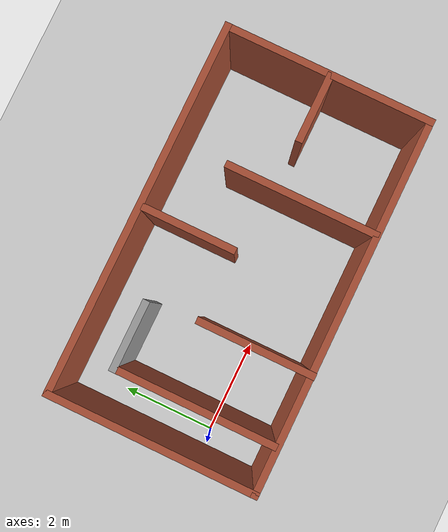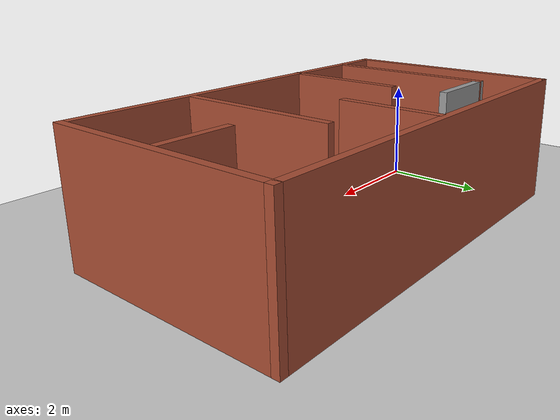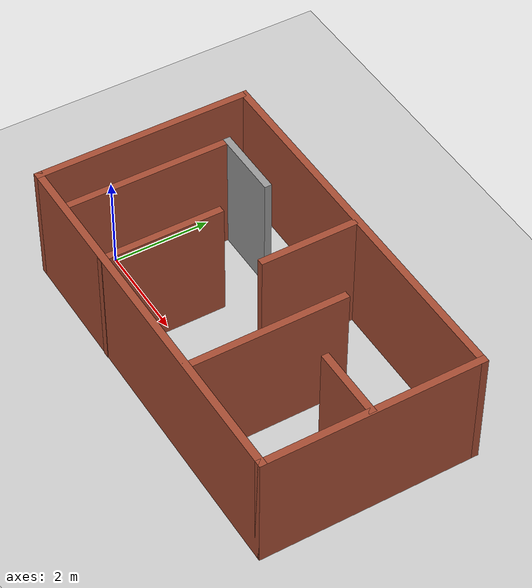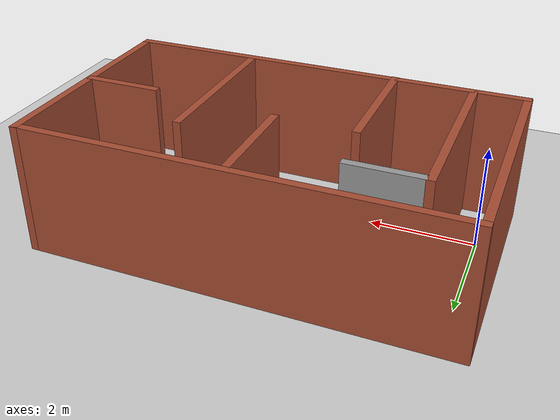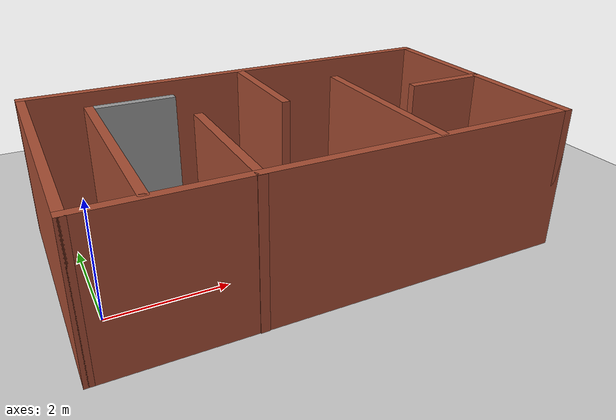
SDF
<sdf version="1.7">
 <world name="default">
  <light name="sun" type="directional">
   <pose>0 0 10 0 -0 0</pose>
   <diffuse>0.8 0.8 0.8 1</diffuse>
   <specular>0.2 0.2 0.2 1</specular>
   <attenuation>
    <range>1000</range>
    <constant>0.9</constant>
    <linear>0.01</linear>
    <quadratic>0.001</quadratic>
   </attenuation>
   <direction>-0.5 0.1 -0.9</direction>
   <spot><inner_angle>0</inner_angle><outer_angle>0</outer_angle><falloff>0</falloff></spot>
  </light>
  <model name="ground_plane">
   <static>1</static>
   <link name="link">
    <collision name="collision">
     <geometry><plane><normal>0 0 1</normal><size>100 100</size></plane></geometry>
     <surface>
      <contact><collide_bitmask>65535</collide_bitmask></contact>
      <friction><ode><mu>100</mu><mu2>50</mu2></ode></friction>
     </surface>
    </collision>
    <visual name="visual">
     <cast_shadows>0</cast_shadows>
     <geometry><plane><normal>0 0 1</normal><size>100 100</size></plane></geometry>
     <material>
      <script><uri>file://media/materials/scripts/gazebo.material</uri><name>Gazebo/Grey</name></script>
     </material>
    </visual>
   </link>
  </model>
  <gravity>0 0 -9.8</gravity>
  <magnetic_field>6e-06 2.3e-05 -4.2e-05</magnetic_field>
  <atmosphere type="adiabatic"/>
  <physics type="ode">
   <max_step_size>0.001</max_step_size>
   <real_time_factor>1</real_time_factor>
   <real_time_update_rate>1000</real_time_update_rate>
  </physics>
  <scene><ambient>0.4 0.4 0.4 1</ambient><background>0.7 0.7 0.7 1</background><shadows>1</shadows></scene>
  <spherical_coordinates>
   <surface_model>EARTH_WGS84</surface_model>
   <latitude_deg>0</latitude_deg>
   <longitude_deg>0</longitude_deg>
   <elevation>0</elevation>
   <heading_deg>0</heading_deg>
  </spherical_coordinates>
  <model name="Untitled">
   <pose>3.5 1 0 0 -0 0</pose>
   <link name="Wall_0">
    <collision name="Wall_0_Collision">
     <geometry><box><size>8 0.15 2.5</size></box></geometry>
     <pose>0 0 1.25 0 -0 0</pose>
    </collision>
    <visual name="Wall_0_Visual">
     <pose>0 0 1.25 0 -0 0</pose>
     <geometry><box><size>8 0.15 2.5</size></box></geometry>
     <material>
      <script><uri>file://media/materials/scripts/gazebo.material</uri><name>Gazebo/Bricks</name></script>
      <ambient>1 1 1 1</ambient>
     </material>
     <meta><layer>0</layer></meta>
    </visual>
    <pose>0 -2.2325 0 0 -0 0</pose>
   </link>
   <link name="Wall_1">
    <collision name="Wall_1_Collision">
     <geometry><box><size>4.5 0.15 2.5</size></box></geometry>
     <pose>0 0 1.25 0 -0 0</pose>
    </collision>
    <visual name="Wall_1_Visual">
     <pose>0 0 1.25 0 -0 0</pose>
     <geometry><box><size>4.5 0.15 2.5</size></box></geometry>
     <material>
      <script><uri>file://media/materials/scripts/gazebo.material</uri><name>Gazebo/Bricks</name></script>
      <ambient>1 1 1 1</ambient>
     </material>
     <meta><layer>0</layer></meta>
    </visual>
    <pose>3.925 -0.0575 0 0 -0 1.5708</pose>
   </link>
   <link name="Wall_10">
    <collision name="Wall_10_Collision">
     <geometry><box><size>2 0.15 2.5</size></box></geometry>
     <pose>0 0 1.25 0 -0 0</pose>
    </collision>
    <visual name="Wall_10_Visual">
     <pose>0 0 1.25 0 -0 0</pose>
     <geometry><box><size>2 0.15 2.5</size></box></geometry>
     <material>
      <script><uri>file://media/materials/scripts/gazebo.material</uri><name>Gazebo/Bricks</name></script>
      <ambient>1 1 1 1</ambient>
     </material>
     <meta><layer>0</layer></meta>
    </visual>
    <pose>0.045 1.0725 0 0 -0 1.5708</pose>
   </link>
   <link name="Wall_12">
    <collision name="Wall_12_Collision">
     <geometry><box><size>3.25 0.15 2.5</size></box></geometry>
     <pose>0 0 1.25 0 -0 0</pose>
    </collision>
    <visual name="Wall_12_Visual">
     <pose>0 0 1.25 0 -0 0</pose>
     <geometry><box><size>3.25 0.15 2.5</size></box></geometry>
     <material>
      <script><uri>file://media/materials/scripts/gazebo.material</uri><name>Gazebo/Bricks</name></script>
      <ambient>1 1 1 1</ambient>
     </material>
     <meta><layer>0</layer></meta>
    </visual>
    <pose>1.48406 -0.642738 0 0 -0 1.5708</pose>
   </link>
   <link name="Wall_14">
    <collision name="Wall_14_Collision">
     <geometry><box><size>1.5 0.15 2.5</size></box></geometry>
     <pose>0 0 1.25 0 -0 0</pose>
    </collision>
    <visual name="Wall_14_Visual">
     <pose>0 0 1.25 0 -0 0</pose>
     <geometry><box><size>1.5 0.15 2.5</size></box></geometry>
     <material>
      <script><uri>file://media/materials/scripts/gazebo.material</uri><name>Gazebo/Bricks</name></script>
      <ambient>1 1 1 1</ambient>
     </material>
     <meta><layer>0</layer></meta>
    </visual>
    <pose>3.21601 -0.103189 0 0 -0 3.14159</pose>
   </link>
   <link name="Wall_2">
    <collision name="Wall_2_Collision">
     <geometry><box><size>8 0.15 2.5</size></box></geometry>
     <pose>0 0 1.25 0 -0 0</pose>
    </collision>
    <visual name="Wall_2_Visual">
     <pose>0 0 1.25 0 -0 0</pose>
     <geometry><box><size>8 0.15 2.5</size></box></geometry>
     <material>
      <script><uri>file://media/materials/scripts/gazebo.material</uri><name>Gazebo/Bricks</name></script>
      <ambient>1 1 1 1</ambient>
     </material>
     <meta><layer>0</layer></meta>
    </visual>
    <pose>0 2.1175 0 0 -0 3.14159</pose>
   </link>
   <link name="Wall_3">
    <collision name="Wall_3_Collision">
     <geometry><box><size>4.5 0.15 2.5</size></box></geometry>
     <pose>0 0 1.25 0 -0 0</pose>
    </collision>
    <visual name="Wall_3_Visual">
     <pose>0 0 1.25 0 -0 0</pose>
     <geometry><box><size>4.5 0.15 2.5</size></box></geometry>
     <material>
      <script><uri>file://media/materials/scripts/gazebo.material</uri><name>Gazebo/Bricks</name></script>
      <ambient>1 1 1 1</ambient>
     </material>
     <meta><layer>0</layer></meta>
    </visual>
    <pose>-3.925 -0.0575 0 0 -0 -1.5708</pose>
   </link>
   <link name="Wall_5">
    <collision name="Wall_5_Collision">
     <geometry><box><size>3.5 0.15 2.5</size></box></geometry>
     <pose>0 0 1.25 0 -0 0</pose>
    </collision>
    <visual name="Wall_5_Visual">
     <pose>0 0 1.25 0 -0 0</pose>
     <geometry><box><size>3.5 0.15 2.5</size></box></geometry>
     <material>
      <script><uri>file://media/materials/scripts/gazebo.material</uri><name>Gazebo/Bricks</name></script>
      <ambient>1 1 1 1</ambient>
     </material>
     <meta><layer>0</layer></meta>
    </visual>
    <pose>-2.955 -0.4775 0 0 -0 1.5708</pose>
   </link>
   <link name="Wall_6">
    <collision name="Wall_6_Collision">
     <geometry><box><size>1.5 0.15 2.5</size></box></geometry>
     <pose>0 0 1.25 0 -0 0</pose>
    </collision>
    <visual name="Wall_6_Visual">
     <pose>0 0 1.25 0 -0 0</pose>
     <geometry><box><size>1.5 0.15 2.5</size></box></geometry>
     <material>
      <script><uri>file://media/materials/scripts/gazebo.material</uri><name>Gazebo/Grey</name></script>
      <ambient>1 1 1 1</ambient>
     </material>
     <meta><layer>0</layer></meta>
    </visual>
    <pose>-2.28 1.1975 0 0 -0 0</pose>
   </link>
   <link name="Wall_8">
    <collision name="Wall_8_Collision">
     <geometry><box><size>2.5 0.15 2.5</size></box></geometry>
     <pose>0 0 1.25 0 -0 0</pose>
    </collision>
    <visual name="Wall_8_Visual">
     <pose>0 0 1.25 0 -0 0</pose>
     <geometry><box><size>2.5 0.15 2.5</size></box></geometry>
     <material>
      <script><uri>file://media/materials/scripts/gazebo.material</uri><name>Gazebo/Bricks</name></script>
      <ambient>1 1 1 1</ambient>
     </material>
     <meta><layer>0</layer></meta>
    </visual>
    <pose>-1.455 -1.0675 0 0 -0 1.5708</pose>
   </link>
   <static>1</static>
  </model>
 </world>
</sdf>
